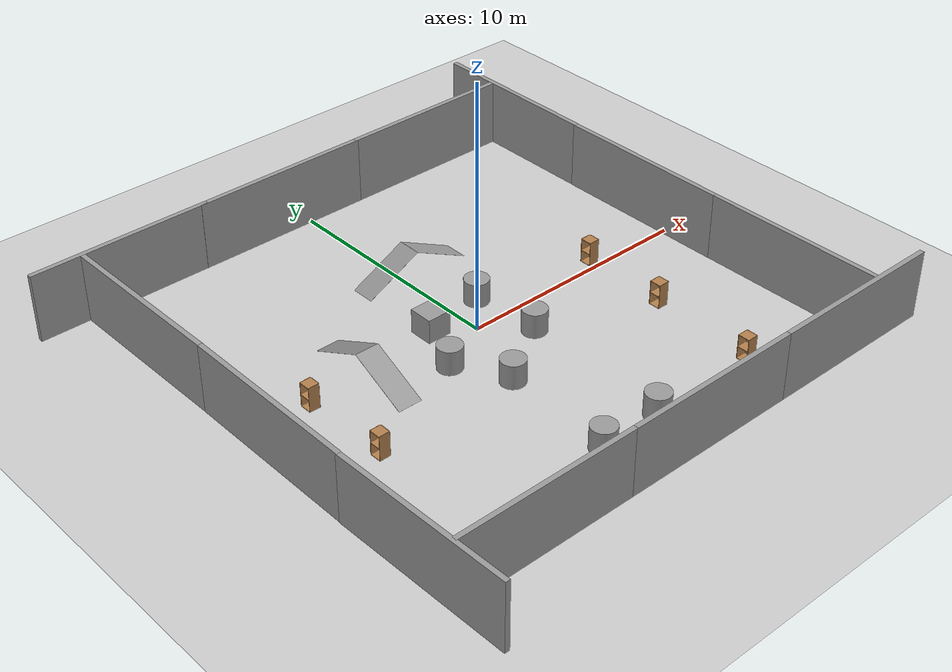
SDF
<sdf version="1.7">
 <world name="default">
  <light name="sun" type="directional">
   <pose>0 0 10 0 -0 0</pose>
   <diffuse>0.8 0.8 0.8 1</diffuse>
   <specular>0.2 0.2 0.2 1</specular>
   <attenuation>
    <range>1000</range>
    <constant>0.9</constant>
    <linear>0.01</linear>
    <quadratic>0.001</quadratic>
   </attenuation>
   <direction>-0.5 0.1 -0.9</direction>
   <spot><inner_angle>0</inner_angle><outer_angle>0</outer_angle><falloff>0</falloff></spot>
  </light>
  <model name="ground_plane">
   <static>1</static>
   <link name="link">
    <collision name="collision">
     <geometry><plane><normal>0 0 1</normal><size>100 100</size></plane></geometry>
     <surface><friction><ode><mu>100</mu><mu2>50</mu2></ode></friction></surface>
    </collision>
    <visual name="visual">
     <cast_shadows>0</cast_shadows>
     <geometry><plane><normal>0 0 1</normal><size>100 100</size></plane></geometry>
     <material>
      <script><uri>file://media/materials/scripts/gazebo.material</uri><name>Gazebo/Grey</name></script>
     </material>
    </visual>
    <enable_wind>1</enable_wind>
   </link>
   <enable_wind>1</enable_wind>
  </model>
  <gravity>0 0 -9.8</gravity>
  <magnetic_field>6e-06 2.3e-05 -4.2e-05</magnetic_field>
  <atmosphere type="adiabatic"/>
  <physics type="ode">
   <max_step_size>0.001</max_step_size>
   <real_time_factor>1</real_time_factor>
   <real_time_update_rate>1000</real_time_update_rate>
  </physics>
  <scene><ambient>0.4 0.4 0.4 1</ambient><background>0.7 0.7 0.7 1</background><shadows>1</shadows></scene>
  <audio><device>default</device></audio>
  <spherical_coordinates>
   <surface_model>EARTH_WGS84</surface_model>
   <latitude_deg>0</latitude_deg>
   <longitude_deg>0</longitude_deg>
   <elevation>0</elevation>
   <heading_deg>0</heading_deg>
  </spherical_coordinates>
  <model name="mobile">
   <link name="base_footprint">
    <inertial>
     <pose>0 0 0.003114 0 -0 0</pose>
     <mass>5.62</mass>
     <inertia><ixx>0.048908</ixx><ixy>0</ixy><ixz>0</ixz><iyy>0.026008</iyy><iyz>0</iyz><izz>0.0596</izz></inertia>
    </inertial>
    <collision name="base_footprint_fixed_joint_lump__base_link_collision">
     <pose>0 0 0.1 0 -0 1.57</pose>
     <geometry><box><size>0.2 0.3 0.1</size></box></geometry>
    </collision>
    <collision name="base_footprint_fixed_joint_lump__lidar_mount_collision_1">
     <pose>0 0 0.175 0 -0 0</pose>
     <geometry><cylinder><length>0.15</length><radius>0.01</radius></cylinder></geometry>
    </collision>
    <visual name="base_footprint_fixed_joint_lump__base_link_visual">
     <pose>0 0 0.1 0 -0 1.57</pose>
     <geometry><box><size>0.2 0.3 0.1</size></box></geometry>
     <material>
      <script><name>Gazebo/Red</name><uri>file://media/materials/scripts/gazebo.material</uri></script>
     </material>
    </visual>
    <visual name="base_footprint_fixed_joint_lump__lidar_mount_visual_1">
     <pose>0 0 0.25 0 -0 0</pose>
     <geometry><cylinder><length>0.15</length><radius>0.01</radius></cylinder></geometry>
    </visual>
   </link>
   <joint name="base_to_wheel1" type="revolute">
    <pose relative_to="base_footprint">0.125 0.125 0.06 0 1.57 1.57</pose>
    <parent>base_footprint</parent>
    <child>wheel_1</child>
    <axis>
     <xyz>0 0 1</xyz>
     <limit><lower>-1e+16</lower><upper>1e+16</upper></limit>
     <dynamics><spring_reference>0</spring_reference><spring_stiffness>0</spring_stiffness></dynamics>
    </axis>
   </joint>
   <link name="wheel_1">
    <pose relative_to="base_to_wheel1">0 0 0 0 -0 0</pose>
    <inertial>
     <mass>0.2</mass>
     <inertia><ixx>0.0002</ixx><ixy>0</ixy><ixz>0</ixz><iyy>0.00015</iyy><iyz>0</iyz><izz>0.0002</izz></inertia>
    </inertial>
    <collision name="wheel_1_collision">
     <geometry><cylinder><length>0.05</length><radius>0.05</radius></cylinder></geometry>
    </collision>
    <visual name="wheel_1_visual">
     <geometry><cylinder><length>0.04</length><radius>0.05</radius></cylinder></geometry>
     <material>
      <script><name>Gazebo/Green</name><uri>file://media/materials/scripts/gazebo.material</uri></script>
     </material>
    </visual>
   </link>
   <joint name="base_to_wheel2" type="revolute">
    <pose relative_to="base_footprint">-0.125 0.125 0.06 0 1.57 1.57</pose>
    <parent>base_footprint</parent>
    <child>wheel_2</child>
    <axis>
     <xyz>0 0 1</xyz>
     <limit><lower>-1e+16</lower><upper>1e+16</upper></limit>
     <dynamics><spring_reference>0</spring_reference><spring_stiffness>0</spring_stiffness></dynamics>
    </axis>
   </joint>
   <link name="wheel_2">
    <pose relative_to="base_to_wheel2">0 0 0 0 -0 0</pose>
    <inertial>
     <mass>0.2</mass>
     <inertia><ixx>0.0002</ixx><ixy>0</ixy><ixz>0</ixz><iyy>0.00015</iyy><iyz>0</iyz><izz>0.0002</izz></inertia>
    </inertial>
    <collision name="wheel_2_collision">
     <geometry><cylinder><length>0.05</length><radius>0.05</radius></cylinder></geometry>
    </collision>
    <visual name="wheel_2_visual">
     <geometry><cylinder><length>0.04</length><radius>0.05</radius></cylinder></geometry>
     <material>
      <script><name>Gazebo/Green</name><uri>file://media/materials/scripts/gazebo.material</uri></script>
     </material>
    </visual>
   </link>
   <joint name="base_to_wheel3" type="revolute">
    <pose relative_to="base_footprint">0.125 -0.125 0.06 0 1.57 1.57</pose>
    <parent>base_footprint</parent>
    <child>wheel_3</child>
    <axis>
     <xyz>0 0 1</xyz>
     <limit><lower>-1e+16</lower><upper>1e+16</upper></limit>
     <dynamics><spring_reference>0</spring_reference><spring_stiffness>0</spring_stiffness></dynamics>
    </axis>
   </joint>
   <link name="wheel_3">
    <pose relative_to="base_to_wheel3">0 0 0 0 -0 0</pose>
    <inertial>
     <mass>0.2</mass>
     <inertia><ixx>0.0002</ixx><ixy>0</ixy><ixz>0</ixz><iyy>0.00015</iyy><iyz>0</iyz><izz>0.0002</izz></inertia>
    </inertial>
    <collision name="wheel_3_collision">
     <geometry><cylinder><length>0.05</length><radius>0.05</radius></cylinder></geometry>
    </collision>
    <visual name="wheel_3_visual">
     <geometry><cylinder><length>0.04</length><radius>0.05</radius></cylinder></geometry>
     <material>
      <script><name>Gazebo/Green</name><uri>file://media/materials/scripts/gazebo.material</uri></script>
     </material>
    </visual>
   </link>
   <joint name="base_to_wheel4" type="revolute">
    <pose relative_to="base_footprint">-0.125 -0.125 0.06 0 1.57 1.57</pose>
    <parent>base_footprint</parent>
    <child>wheel_4</child>
    <axis>
     <xyz>0 0 1</xyz>
     <limit><lower>-1e+16</lower><upper>1e+16</upper></limit>
     <dynamics><spring_reference>0</spring_reference><spring_stiffness>0</spring_stiffness></dynamics>
    </axis>
   </joint>
   <link name="wheel_4">
    <pose relative_to="base_to_wheel4">0 0 0 0 -0 0</pose>
    <inertial>
     <mass>0.2</mass>
     <inertia><ixx>0.0002</ixx><ixy>0</ixy><ixz>0</ixz><iyy>0.00015</iyy><iyz>0</iyz><izz>0.0002</izz></inertia>
    </inertial>
    <collision name="wheel_4_collision">
     <geometry><cylinder><length>0.05</length><radius>0.05</radius></cylinder></geometry>
    </collision>
    <visual name="wheel_4_visual">
     <geometry><cylinder><length>0.04</length><radius>0.05</radius></cylinder></geometry>
     <material>
      <script><name>Gazebo/Green</name><uri>file://media/materials/scripts/gazebo.material</uri></script>
     </material>
    </visual>
   </link>
   <joint name="lidar_joint" type="revolute">
    <pose relative_to="base_footprint">0.1 0 0.225 0 -0 0</pose>
    <parent>base_footprint</parent>
    <child>lidar_link</child>
    <axis>
     <xyz>0 0 1</xyz>
     <limit><lower>-1e+16</lower><upper>1e+16</upper></limit>
     <dynamics><spring_reference>0</spring_reference><spring_stiffness>0</spring_stiffness></dynamics>
    </axis>
   </joint>
   <link name="lidar_link">
    <pose relative_to="lidar_joint">0 0 0 0 -0 0</pose>
    <inertial>
     <mass>0.05</mass>
     <inertia><ixx>0.0001</ixx><ixy>0</ixy><ixz>0</ixz><iyy>0.0001</iyy><iyz>0</iyz><izz>0.0001</izz></inertia>
    </inertial>
    <collision name="lidar_link_collision">
     <geometry><cylinder><length>0.05</length><radius>0.03</radius></cylinder></geometry>
    </collision>
    <visual name="lidar_link_visual">
     <pose>0 0 0.025 0 -0 0</pose>
     <geometry><cylinder><length>0.05</length><radius>0.03</radius></cylinder></geometry>
    </visual>
    <sensor name="lidar" type="ray">
     <pose>0 0 0.025 0 -0 0</pose>
     <visualize>1</visualize>
     <update_rate>10</update_rate>
     <ray>
      <scan>
       <horizontal>
        <samples>360</samples>
        <resolution>1</resolution>
        <min_angle>-3.14159</min_angle>
        <max_angle>3.14159</max_angle>
       </horizontal>
       <vertical><samples>1</samples><min_angle>0</min_angle><max_angle>0</max_angle></vertical>
      </scan>
      <range><min>0.12</min><max>3.5</max><resolution>0.01</resolution></range>
     </ray>
     <plugin name="lidar_controller" filename="libgazebo_ros_ray_sensor.so">
      <ros><namespace>/mobile</namespace><remapping>~/out:=scan</remapping></ros>
      <output_type>sensor_msgs/LaserScan</output_type>
      <frame_name>lidar_link</frame_name>
     </plugin>
    </sensor>
   </link>
   <plugin name="mecanum_drive" filename="libgazebo_ros_planar_move.so">
    <commandTopic>cmd_vel</commandTopic>
    <odometryTopic>odom</odometryTopic>
    <odometryFrame>odom</odometryFrame>
    <robotBaseFrame>base_footprint</robotBaseFrame>
    <publishWheelTF>1</publishWheelTF>
    <publishWheelJointState>1</publishWheelJointState>
    <frontLeftJoint>base_to_wheel1</frontLeftJoint>
    <frontRightJoint>base_to_wheel2</frontRightJoint>
    <rearLeftJoint>base_to_wheel3</rearLeftJoint>
    <rearRightJoint>base_to_wheel4</rearRightJoint>
    <wheelSeparation>0.35</wheelSeparation>
    <wheelDiameter>0.1</wheelDiameter>
    <wheelTorque>2</wheelTorque>
   </plugin>
   <plugin name="lidar_rotation" filename="libgazebo_ros_joint_state_publisher.so">
    <joint_name>lidar_joint</joint_name>
    <update_rate>10</update_rate>
    <velocity>3.14159</velocity>
   </plugin>
   <frame name="mount_joint" attached_to="base_link"><pose>0 0 0.175 0 -0 0</pose></frame>
   <frame name="lidar_mount" attached_to="mount_joint"/>
   <frame name="base_link_joint" attached_to="base_footprint"/>
   <frame name="base_link" attached_to="base_link_joint"/>
   <pose>9.66532 -9.77825 -0.009988 -1e-06 6.4e-05 -3.14157</pose>
  </model>
  <model name="unit_cylinder">
   <pose>1.47684 -1.45425 0.499994 -1e-06 -0 0.198041</pose>
   <link name="wall_link">
    <inertial>
     <mass>1</mass>
     <inertia><ixx>0.145833</ixx><ixy>0</ixy><ixz>0</ixz><iyy>0.145833</iyy><iyz>0</iyz><izz>0.125</izz></inertia>
    </inertial>
    <collision name="collision">
     <geometry><cylinder><radius>0.5</radius><length>1</length></cylinder></geometry>
    </collision>
    <visual name="visual">
     <geometry><cylinder><radius>0.5</radius><length>1</length></cylinder></geometry>
     <material>
      <script><name>Gazebo/Grey</name><uri>file://media/materials/scripts/gazebo.material</uri></script>
     </material>
    </visual>
   </link>
  </model>
  <model name="unit_cylinder_0">
   <pose>1.20355 1.38499 0.499991 -1e-06 -0 -0.042315</pose>
   <link name="link">
    <inertial>
     <mass>1</mass>
     <inertia><ixx>0.145833</ixx><ixy>0</ixy><ixz>0</ixz><iyy>0.145833</iyy><iyz>0</iyz><izz>0.125</izz></inertia>
    </inertial>
    <collision name="collision">
     <geometry><cylinder><radius>0.5</radius><length>1</length></cylinder></geometry>
    </collision>
    <visual name="visual">
     <geometry><cylinder><radius>0.5</radius><length>1</length></cylinder></geometry>
     <material>
      <script><name>Gazebo/Grey</name><uri>file://media/materials/scripts/gazebo.material</uri></script>
     </material>
    </visual>
   </link>
  </model>
  <model name="unit_box">
   <pose>-1.39436 0.971558 0.499995 -1e-05 -0 -1.5e-05</pose>
   <link name="link">
    <inertial>
     <mass>1</mass>
     <inertia>
      <ixx>0.166667</ixx>
      <ixy>0</ixy>
      <ixz>0</ixz>
      <iyy>0.166667</iyy>
      <iyz>0</iyz>
      <izz>0.166667</izz>
     </inertia>
    </inertial>
    <collision name="collision"><geometry><box><size>1 1 1</size></box></geometry></collision>
    <visual name="visual">
     <geometry><box><size>1 1 1</size></box></geometry>
     <material>
      <script><name>Gazebo/Grey</name><uri>file://media/materials/scripts/gazebo.material</uri></script>
     </material>
    </visual>
   </link>
  </model>
  <model name="unit_cylinder_1">
   <pose>-1.16468 -3.14024 0.499994 -3e-06 -1e-06 -0</pose>
   <link name="link">
    <inertial>
     <mass>1</mass>
     <inertia><ixx>0.145833</ixx><ixy>0</ixy><ixz>0</ixz><iyy>0.145833</iyy><iyz>0</iyz><izz>0.125</izz></inertia>
    </inertial>
    <collision name="collision">
     <geometry><cylinder><radius>0.5</radius><length>1</length></cylinder></geometry>
    </collision>
    <visual name="visual">
     <geometry><cylinder><radius>0.5</radius><length>1</length></cylinder></geometry>
     <material>
      <script><name>Gazebo/Grey</name><uri>file://media/materials/scripts/gazebo.material</uri></script>
     </material>
    </visual>
   </link>
  </model>
  <model name="unit_cylinder_2">
   <pose>-2.26618 -1.06872 0.499996 3e-06 1e-06 -0</pose>
   <link name="link">
    <inertial>
     <mass>1</mass>
     <inertia><ixx>0.145833</ixx><ixy>0</ixy><ixz>0</ixz><iyy>0.145833</iyy><iyz>0</iyz><izz>0.125</izz></inertia>
    </inertial>
    <collision name="collision">
     <geometry><cylinder><radius>0.5</radius><length>1</length></cylinder></geometry>
    </collision>
    <visual name="visual">
     <geometry><cylinder><radius>0.5</radius><length>1</length></cylinder></geometry>
     <material>
      <script><name>Gazebo/Grey</name><uri>file://media/materials/scripts/gazebo.material</uri></script>
     </material>
    </visual>
   </link>
  </model>
  <light name="user_directional_light_0" type="directional">
   <pose>34.3436 6.36731 1 0 -0 0</pose>
   <diffuse>0.5 0.5 0.5 1</diffuse>
   <specular>0.1 0.1 0.1 1</specular>
   <direction>0.1 0.1 -0.9</direction>
   <attenuation>
    <range>20</range>
    <constant>0.5</constant>
    <linear>0.01</linear>
    <quadratic>0.001</quadratic>
   </attenuation>
   <spot><inner_angle>0</inner_angle><outer_angle>0</outer_angle><falloff>0</falloff></spot>
  </light>
  <light name="user_directional_light_1" type="directional">
   <pose>-7.62776 36.5536 1 0 -0 0</pose>
   <diffuse>0.5 0.5 0.5 1</diffuse>
   <specular>0.1 0.1 0.1 1</specular>
   <direction>0.1 0.1 -0.9</direction>
   <attenuation>
    <range>20</range>
    <constant>0.5</constant>
    <linear>0.01</linear>
    <quadratic>0.001</quadratic>
   </attenuation>
   <spot><inner_angle>0</inner_angle><outer_angle>0</outer_angle><falloff>0</falloff></spot>
  </light>
  <light name="user_directional_light_2" type="directional">
   <pose>-22.8288 -10.4388 1 0 -0 0</pose>
   <diffuse>0.5 0.5 0.5 1</diffuse>
   <specular>0.1 0.1 0.1 1</specular>
   <direction>0.1 0.1 -0.9</direction>
   <attenuation>
    <range>20</range>
    <constant>0.5</constant>
    <linear>0.01</linear>
    <quadratic>0.001</quadratic>
   </attenuation>
   <spot><inner_angle>0</inner_angle><outer_angle>0</outer_angle><falloff>0</falloff></spot>
  </light>
  <light name="user_directional_light_3" type="directional">
   <pose>21.583 -18.7249 1 0 -0 0</pose>
   <diffuse>0.5 0.5 0.5 1</diffuse>
   <specular>0.1 0.1 0.1 1</specular>
   <direction>0.1 0.1 -0.9</direction>
   <attenuation>
    <range>20</range>
    <constant>0.5</constant>
    <linear>0.01</linear>
    <quadratic>0.001</quadratic>
   </attenuation>
   <spot><inner_angle>0</inner_angle><outer_angle>0</outer_angle><falloff>0</falloff></spot>
  </light>
  <model name="cabinet">
   <static>1</static>
   <link name="cabinet_bottom_plate">
    <inertial>
     <pose>0 0 -1 0 -0 0</pose>
     <inertia><ixx>2.05</ixx><ixy>0</ixy><ixz>0</ixz><iyy>2.05</iyy><iyz>0</iyz><izz>2.05</izz></inertia>
     <mass>25</mass>
    </inertial>
    <collision name="cabinet_bottom_plate_geom">
     <pose>0 0 0.01 0 -0 0</pose>
     <geometry><box><size>0.45 0.45 0.02</size></box></geometry>
    </collision>
    <visual name="cabinet_bottom_plate_geom_visual">
     <pose>0 0 0.01 0 -0 0</pose>
     <geometry><box><size>0.45 0.45 0.02</size></box></geometry>
     <material>
      <script><uri>file://media/materials/scripts/gazebo.material</uri><name>Gazebo/Wood</name></script>
     </material>
    </visual>
    <collision name="cabinet_bottom_plate_geom_cabinet_back_plate">
     <pose>0.235 0 0.51 0 -0 0</pose>
     <geometry><box><size>0.02 0.45 1.02</size></box></geometry>
    </collision>
    <visual name="cabinet_bottom_plate_geom_cabinet_back_plate_visual">
     <pose>0.235 0 0.51 0 -0 0</pose>
     <geometry><box><size>0.02 0.45 1.02</size></box></geometry>
     <material>
      <script><uri>file://media/materials/scripts/gazebo.material</uri><name>Gazebo/Wood</name></script>
     </material>
    </visual>
    <collision name="cabinet_bottom_plate_geom_cabinet_left_plate">
     <pose>0 0.235 0.51 0 -0 0</pose>
     <geometry><box><size>0.45 0.02 1.02</size></box></geometry>
    </collision>
    <visual name="cabinet_bottom_plate_geom_cabinet_left_plate_visual">
     <pose>0 0.235 0.51 0 -0 0</pose>
     <geometry><box><size>0.45 0.02 1.02</size></box></geometry>
     <material>
      <script><uri>file://media/materials/scripts/gazebo.material</uri><name>Gazebo/Wood</name></script>
     </material>
    </visual>
    <collision name="cabinet_bottom_plate_geom_cabinet_middle_plate">
     <pose>0 0 0.51 0 -0 0</pose>
     <geometry><box><size>0.45 0.45 0.02</size></box></geometry>
    </collision>
    <visual name="cabinet_bottom_plate_geom_cabinet_middle_plate_visual">
     <pose>0 0 0.51 0 -0 0</pose>
     <geometry><box><size>0.45 0.45 0.02</size></box></geometry>
     <material>
      <script><uri>file://media/materials/scripts/gazebo.material</uri><name>Gazebo/Wood</name></script>
     </material>
    </visual>
    <collision name="cabinet_bottom_plate_geom_cabinet_right_plate">
     <pose>0 -0.235 0.51 0 -0 0</pose>
     <geometry><box><size>0.45 0.02 1.02</size></box></geometry>
    </collision>
    <visual name="cabinet_bottom_plate_geom_cabinet_right_plate_visual">
     <pose>0 -0.235 0.51 0 -0 0</pose>
     <geometry><box><size>0.45 0.02 1.02</size></box></geometry>
     <material>
      <script><uri>file://media/materials/scripts/gazebo.material</uri><name>Gazebo/Wood</name></script>
     </material>
    </visual>
    <collision name="cabinet_bottom_plate_geom_cabinet_top_plate">
     <pose>0 0 1.01 0 -0 0</pose>
     <geometry><box><size>0.45 0.45 0.02</size></box></geometry>
    </collision>
    <visual name="cabinet_bottom_plate_geom_cabinet_top_plate_visual">
     <pose>0 0 1.01 0 -0 0</pose>
     <geometry><box><size>0.45 0.45 0.02</size></box></geometry>
     <material>
      <script><uri>file://media/materials/scripts/gazebo.material</uri><name>Gazebo/Wood</name></script>
     </material>
    </visual>
   </link>
   <pose>6.20407 0.441176 0 0 -0 0</pose>
  </model>
  <model name="cabinet_0">
   <static>1</static>
   <link name="cabinet_bottom_plate">
    <inertial>
     <pose>0 0 -1 0 -0 0</pose>
     <inertia><ixx>2.05</ixx><ixy>0</ixy><ixz>0</ixz><iyy>2.05</iyy><iyz>0</iyz><izz>2.05</izz></inertia>
     <mass>25</mass>
    </inertial>
    <collision name="cabinet_bottom_plate_geom">
     <pose>0 0 0.01 0 -0 0</pose>
     <geometry><box><size>0.45 0.45 0.02</size></box></geometry>
    </collision>
    <visual name="cabinet_bottom_plate_geom_visual">
     <pose>0 0 0.01 0 -0 0</pose>
     <geometry><box><size>0.45 0.45 0.02</size></box></geometry>
     <material>
      <script><uri>file://media/materials/scripts/gazebo.material</uri><name>Gazebo/Wood</name></script>
     </material>
    </visual>
    <collision name="cabinet_bottom_plate_geom_cabinet_back_plate">
     <pose>0.235 0 0.51 0 -0 0</pose>
     <geometry><box><size>0.02 0.45 1.02</size></box></geometry>
    </collision>
    <visual name="cabinet_bottom_plate_geom_cabinet_back_plate_visual">
     <pose>0.235 0 0.51 0 -0 0</pose>
     <geometry><box><size>0.02 0.45 1.02</size></box></geometry>
     <material>
      <script><uri>file://media/materials/scripts/gazebo.material</uri><name>Gazebo/Wood</name></script>
     </material>
    </visual>
    <collision name="cabinet_bottom_plate_geom_cabinet_left_plate">
     <pose>0 0.235 0.51 0 -0 0</pose>
     <geometry><box><size>0.45 0.02 1.02</size></box></geometry>
    </collision>
    <visual name="cabinet_bottom_plate_geom_cabinet_left_plate_visual">
     <pose>0 0.235 0.51 0 -0 0</pose>
     <geometry><box><size>0.45 0.02 1.02</size></box></geometry>
     <material>
      <script><uri>file://media/materials/scripts/gazebo.material</uri><name>Gazebo/Wood</name></script>
     </material>
    </visual>
    <collision name="cabinet_bottom_plate_geom_cabinet_middle_plate">
     <pose>0 0 0.51 0 -0 0</pose>
     <geometry><box><size>0.45 0.45 0.02</size></box></geometry>
    </collision>
    <visual name="cabinet_bottom_plate_geom_cabinet_middle_plate_visual">
     <pose>0 0 0.51 0 -0 0</pose>
     <geometry><box><size>0.45 0.45 0.02</size></box></geometry>
     <material>
      <script><uri>file://media/materials/scripts/gazebo.material</uri><name>Gazebo/Wood</name></script>
     </material>
    </visual>
    <collision name="cabinet_bottom_plate_geom_cabinet_right_plate">
     <pose>0 -0.235 0.51 0 -0 0</pose>
     <geometry><box><size>0.45 0.02 1.02</size></box></geometry>
    </collision>
    <visual name="cabinet_bottom_plate_geom_cabinet_right_plate_visual">
     <pose>0 -0.235 0.51 0 -0 0</pose>
     <geometry><box><size>0.45 0.02 1.02</size></box></geometry>
     <material>
      <script><uri>file://media/materials/scripts/gazebo.material</uri><name>Gazebo/Wood</name></script>
     </material>
    </visual>
    <collision name="cabinet_bottom_plate_geom_cabinet_top_plate">
     <pose>0 0 1.01 0 -0 0</pose>
     <geometry><box><size>0.45 0.45 0.02</size></box></geometry>
    </collision>
    <visual name="cabinet_bottom_plate_geom_cabinet_top_plate_visual">
     <pose>0 0 1.01 0 -0 0</pose>
     <geometry><box><size>0.45 0.45 0.02</size></box></geometry>
     <material>
      <script><uri>file://media/materials/scripts/gazebo.material</uri><name>Gazebo/Wood</name></script>
     </material>
    </visual>
   </link>
   <pose>6.06277 -3.30596 0 0 -0 0</pose>
  </model>
  <model name="cabinet_1">
   <static>1</static>
   <link name="cabinet_bottom_plate">
    <inertial>
     <pose>0 0 -1 0 -0 0</pose>
     <inertia><ixx>2.05</ixx><ixy>0</ixy><ixz>0</ixz><iyy>2.05</iyy><iyz>0</iyz><izz>2.05</izz></inertia>
     <mass>25</mass>
    </inertial>
    <collision name="cabinet_bottom_plate_geom">
     <pose>0 0 0.01 0 -0 0</pose>
     <geometry><box><size>0.45 0.45 0.02</size></box></geometry>
    </collision>
    <visual name="cabinet_bottom_plate_geom_visual">
     <pose>0 0 0.01 0 -0 0</pose>
     <geometry><box><size>0.45 0.45 0.02</size></box></geometry>
     <material>
      <script><uri>file://media/materials/scripts/gazebo.material</uri><name>Gazebo/Wood</name></script>
     </material>
    </visual>
    <collision name="cabinet_bottom_plate_geom_cabinet_back_plate">
     <pose>0.235 0 0.51 0 -0 0</pose>
     <geometry><box><size>0.02 0.45 1.02</size></box></geometry>
    </collision>
    <visual name="cabinet_bottom_plate_geom_cabinet_back_plate_visual">
     <pose>0.235 0 0.51 0 -0 0</pose>
     <geometry><box><size>0.02 0.45 1.02</size></box></geometry>
     <material>
      <script><uri>file://media/materials/scripts/gazebo.material</uri><name>Gazebo/Wood</name></script>
     </material>
    </visual>
    <collision name="cabinet_bottom_plate_geom_cabinet_left_plate">
     <pose>0 0.235 0.51 0 -0 0</pose>
     <geometry><box><size>0.45 0.02 1.02</size></box></geometry>
    </collision>
    <visual name="cabinet_bottom_plate_geom_cabinet_left_plate_visual">
     <pose>0 0.235 0.51 0 -0 0</pose>
     <geometry><box><size>0.45 0.02 1.02</size></box></geometry>
     <material>
      <script><uri>file://media/materials/scripts/gazebo.material</uri><name>Gazebo/Wood</name></script>
     </material>
    </visual>
    <collision name="cabinet_bottom_plate_geom_cabinet_middle_plate">
     <pose>0 0 0.51 0 -0 0</pose>
     <geometry><box><size>0.45 0.45 0.02</size></box></geometry>
    </collision>
    <visual name="cabinet_bottom_plate_geom_cabinet_middle_plate_visual">
     <pose>0 0 0.51 0 -0 0</pose>
     <geometry><box><size>0.45 0.45 0.02</size></box></geometry>
     <material>
      <script><uri>file://media/materials/scripts/gazebo.material</uri><name>Gazebo/Wood</name></script>
     </material>
    </visual>
    <collision name="cabinet_bottom_plate_geom_cabinet_right_plate">
     <pose>0 -0.235 0.51 0 -0 0</pose>
     <geometry><box><size>0.45 0.02 1.02</size></box></geometry>
    </collision>
    <visual name="cabinet_bottom_plate_geom_cabinet_right_plate_visual">
     <pose>0 -0.235 0.51 0 -0 0</pose>
     <geometry><box><size>0.45 0.02 1.02</size></box></geometry>
     <material>
      <script><uri>file://media/materials/scripts/gazebo.material</uri><name>Gazebo/Wood</name></script>
     </material>
    </visual>
    <collision name="cabinet_bottom_plate_geom_cabinet_top_plate">
     <pose>0 0 1.01 0 -0 0</pose>
     <geometry><box><size>0.45 0.45 0.02</size></box></geometry>
    </collision>
    <visual name="cabinet_bottom_plate_geom_cabinet_top_plate_visual">
     <pose>0 0 1.01 0 -0 0</pose>
     <geometry><box><size>0.45 0.45 0.02</size></box></geometry>
     <material>
      <script><uri>file://media/materials/scripts/gazebo.material</uri><name>Gazebo/Wood</name></script>
     </material>
    </visual>
   </link>
   <pose>5.87239 -7.70916 0 0 -0 0</pose>
  </model>
  <model name="cabinet_2">
   <static>1</static>
   <link name="cabinet_bottom_plate">
    <inertial>
     <pose>0 0 -1 0 -0 0</pose>
     <inertia><ixx>2.05</ixx><ixy>0</ixy><ixz>0</ixz><iyy>2.05</iyy><iyz>0</iyz><izz>2.05</izz></inertia>
     <mass>25</mass>
    </inertial>
    <collision name="cabinet_bottom_plate_geom">
     <pose>0 0 0.01 0 -0 0</pose>
     <geometry><box><size>0.45 0.45 0.02</size></box></geometry>
    </collision>
    <visual name="cabinet_bottom_plate_geom_visual">
     <pose>0 0 0.01 0 -0 0</pose>
     <geometry><box><size>0.45 0.45 0.02</size></box></geometry>
     <material>
      <script><uri>file://media/materials/scripts/gazebo.material</uri><name>Gazebo/Wood</name></script>
     </material>
    </visual>
    <collision name="cabinet_bottom_plate_geom_cabinet_back_plate">
     <pose>0.235 0 0.51 0 -0 0</pose>
     <geometry><box><size>0.02 0.45 1.02</size></box></geometry>
    </collision>
    <visual name="cabinet_bottom_plate_geom_cabinet_back_plate_visual">
     <pose>0.235 0 0.51 0 -0 0</pose>
     <geometry><box><size>0.02 0.45 1.02</size></box></geometry>
     <material>
      <script><uri>file://media/materials/scripts/gazebo.material</uri><name>Gazebo/Wood</name></script>
     </material>
    </visual>
    <collision name="cabinet_bottom_plate_geom_cabinet_left_plate">
     <pose>0 0.235 0.51 0 -0 0</pose>
     <geometry><box><size>0.45 0.02 1.02</size></box></geometry>
    </collision>
    <visual name="cabinet_bottom_plate_geom_cabinet_left_plate_visual">
     <pose>0 0.235 0.51 0 -0 0</pose>
     <geometry><box><size>0.45 0.02 1.02</size></box></geometry>
     <material>
      <script><uri>file://media/materials/scripts/gazebo.material</uri><name>Gazebo/Wood</name></script>
     </material>
    </visual>
    <collision name="cabinet_bottom_plate_geom_cabinet_middle_plate">
     <pose>0 0 0.51 0 -0 0</pose>
     <geometry><box><size>0.45 0.45 0.02</size></box></geometry>
    </collision>
    <visual name="cabinet_bottom_plate_geom_cabinet_middle_plate_visual">
     <pose>0 0 0.51 0 -0 0</pose>
     <geometry><box><size>0.45 0.45 0.02</size></box></geometry>
     <material>
      <script><uri>file://media/materials/scripts/gazebo.material</uri><name>Gazebo/Wood</name></script>
     </material>
    </visual>
    <collision name="cabinet_bottom_plate_geom_cabinet_right_plate">
     <pose>0 -0.235 0.51 0 -0 0</pose>
     <geometry><box><size>0.45 0.02 1.02</size></box></geometry>
    </collision>
    <visual name="cabinet_bottom_plate_geom_cabinet_right_plate_visual">
     <pose>0 -0.235 0.51 0 -0 0</pose>
     <geometry><box><size>0.45 0.02 1.02</size></box></geometry>
     <material>
      <script><uri>file://media/materials/scripts/gazebo.material</uri><name>Gazebo/Wood</name></script>
     </material>
    </visual>
    <collision name="cabinet_bottom_plate_geom_cabinet_top_plate">
     <pose>0 0 1.01 0 -0 0</pose>
     <geometry><box><size>0.45 0.45 0.02</size></box></geometry>
    </collision>
    <visual name="cabinet_bottom_plate_geom_cabinet_top_plate_visual">
     <pose>0 0 1.01 0 -0 0</pose>
     <geometry><box><size>0.45 0.45 0.02</size></box></geometry>
     <material>
      <script><uri>file://media/materials/scripts/gazebo.material</uri><name>Gazebo/Wood</name></script>
     </material>
    </visual>
   </link>
   <pose>-7.26254 0.43817 0 0 -0 0</pose>
  </model>
  <model name="cabinet_3">
   <static>1</static>
   <link name="cabinet_bottom_plate">
    <inertial>
     <pose>0 0 -1 0 -0 0</pose>
     <inertia><ixx>2.05</ixx><ixy>0</ixy><ixz>0</ixz><iyy>2.05</iyy><iyz>0</iyz><izz>2.05</izz></inertia>
     <mass>25</mass>
    </inertial>
    <collision name="cabinet_bottom_plate_geom">
     <pose>0 0 0.01 0 -0 0</pose>
     <geometry><box><size>0.45 0.45 0.02</size></box></geometry>
    </collision>
    <visual name="cabinet_bottom_plate_geom_visual">
     <pose>0 0 0.01 0 -0 0</pose>
     <geometry><box><size>0.45 0.45 0.02</size></box></geometry>
     <material>
      <script><uri>file://media/materials/scripts/gazebo.material</uri><name>Gazebo/Wood</name></script>
     </material>
    </visual>
    <collision name="cabinet_bottom_plate_geom_cabinet_back_plate">
     <pose>0.235 0 0.51 0 -0 0</pose>
     <geometry><box><size>0.02 0.45 1.02</size></box></geometry>
    </collision>
    <visual name="cabinet_bottom_plate_geom_cabinet_back_plate_visual">
     <pose>0.235 0 0.51 0 -0 0</pose>
     <geometry><box><size>0.02 0.45 1.02</size></box></geometry>
     <material>
      <script><uri>file://media/materials/scripts/gazebo.material</uri><name>Gazebo/Wood</name></script>
     </material>
    </visual>
    <collision name="cabinet_bottom_plate_geom_cabinet_left_plate">
     <pose>0 0.235 0.51 0 -0 0</pose>
     <geometry><box><size>0.45 0.02 1.02</size></box></geometry>
    </collision>
    <visual name="cabinet_bottom_plate_geom_cabinet_left_plate_visual">
     <pose>0 0.235 0.51 0 -0 0</pose>
     <geometry><box><size>0.45 0.02 1.02</size></box></geometry>
     <material>
      <script><uri>file://media/materials/scripts/gazebo.material</uri><name>Gazebo/Wood</name></script>
     </material>
    </visual>
    <collision name="cabinet_bottom_plate_geom_cabinet_middle_plate">
     <pose>0 0 0.51 0 -0 0</pose>
     <geometry><box><size>0.45 0.45 0.02</size></box></geometry>
    </collision>
    <visual name="cabinet_bottom_plate_geom_cabinet_middle_plate_visual">
     <pose>0 0 0.51 0 -0 0</pose>
     <geometry><box><size>0.45 0.45 0.02</size></box></geometry>
     <material>
      <script><uri>file://media/materials/scripts/gazebo.material</uri><name>Gazebo/Wood</name></script>
     </material>
    </visual>
    <collision name="cabinet_bottom_plate_geom_cabinet_right_plate">
     <pose>0 -0.235 0.51 0 -0 0</pose>
     <geometry><box><size>0.45 0.02 1.02</size></box></geometry>
    </collision>
    <visual name="cabinet_bottom_plate_geom_cabinet_right_plate_visual">
     <pose>0 -0.235 0.51 0 -0 0</pose>
     <geometry><box><size>0.45 0.02 1.02</size></box></geometry>
     <material>
      <script><uri>file://media/materials/scripts/gazebo.material</uri><name>Gazebo/Wood</name></script>
     </material>
    </visual>
    <collision name="cabinet_bottom_plate_geom_cabinet_top_plate">
     <pose>0 0 1.01 0 -0 0</pose>
     <geometry><box><size>0.45 0.45 0.02</size></box></geometry>
    </collision>
    <visual name="cabinet_bottom_plate_geom_cabinet_top_plate_visual">
     <pose>0 0 1.01 0 -0 0</pose>
     <geometry><box><size>0.45 0.45 0.02</size></box></geometry>
     <material>
      <script><uri>file://media/materials/scripts/gazebo.material</uri><name>Gazebo/Wood</name></script>
     </material>
    </visual>
   </link>
   <pose>-7.11146 -3.14017 0 0 -0 0</pose>
  </model>
  <model name="grey_wall">
   <static>1</static>
   <link name="link">
    <pose>0 0 1.4 0 -0 0</pose>
    <collision name="collision"><geometry><box><size>7.5 0.2 2.8</size></box></geometry></collision>
    <visual name="visual">
     <cast_shadows>0</cast_shadows>
     <geometry><box><size>7.5 0.2 2.8</size></box></geometry>
     <material>
      <script>
       <uri>model://grey_wall/materials/scripts</uri>
       <uri>model://grey_wall/materials/textures</uri>
       <name>vrc/grey_wall</name>
      </script>
     </material>
    </visual>
   </link>
   <pose>-6.16963 -10.0263 0 0 -0 0</pose>
  </model>
  <model name="grey_wall_0">
   <static>1</static>
   <link name="link">
    <pose>0 0 1.4 0 -0 0</pose>
    <collision name="collision"><geometry><box><size>7.5 0.2 2.8</size></box></geometry></collision>
    <visual name="visual">
     <cast_shadows>0</cast_shadows>
     <geometry><box><size>7.5 0.2 2.8</size></box></geometry>
     <material>
      <script>
       <uri>model://grey_wall/materials/scripts</uri>
       <uri>model://grey_wall/materials/textures</uri>
       <name>vrc/grey_wall</name>
      </script>
     </material>
    </visual>
   </link>
   <pose>1.28323 -10.0274 0 0 -0 0</pose>
  </model>
  <model name="grey_wall_1">
   <static>1</static>
   <link name="link">
    <pose>0 0 1.4 0 -0 0</pose>
    <collision name="collision"><geometry><box><size>7.5 0.2 2.8</size></box></geometry></collision>
    <visual name="visual">
     <cast_shadows>0</cast_shadows>
     <geometry><box><size>7.5 0.2 2.8</size></box></geometry>
     <material>
      <script>
       <uri>model://grey_wall/materials/scripts</uri>
       <uri>model://grey_wall/materials/textures</uri>
       <name>vrc/grey_wall</name>
      </script>
     </material>
    </visual>
   </link>
   <pose>8.7317 -10.0283 0 0 -0 0</pose>
  </model>
  <model name="grey_wall_2">
   <static>1</static>
   <link name="link">
    <pose>0 0 1.4 0 -0 0</pose>
    <collision name="collision"><geometry><box><size>7.5 0.2 2.8</size></box></geometry></collision>
    <visual name="visual">
     <cast_shadows>0</cast_shadows>
     <geometry><box><size>7.5 0.2 2.8</size></box></geometry>
     <material>
      <script>
       <uri>model://grey_wall/materials/scripts</uri>
       <uri>model://grey_wall/materials/textures</uri>
       <name>vrc/grey_wall</name>
      </script>
     </material>
    </visual>
   </link>
   <pose>9.92946 -6.19201 0 0 -0 1.57396</pose>
  </model>
  <model name="grey_wall_3">
   <static>1</static>
   <link name="link">
    <pose>0 0 1.4 0 -0 0</pose>
    <collision name="collision"><geometry><box><size>7.5 0.2 2.8</size></box></geometry></collision>
    <visual name="visual">
     <cast_shadows>0</cast_shadows>
     <geometry><box><size>7.5 0.2 2.8</size></box></geometry>
     <material>
      <script>
       <uri>model://grey_wall/materials/scripts</uri>
       <uri>model://grey_wall/materials/textures</uri>
       <name>vrc/grey_wall</name>
      </script>
     </material>
    </visual>
   </link>
   <pose>9.91462 1.30754 0 0 0 -1.57099</pose>
  </model>
  <model name="grey_wall_4">
   <static>1</static>
   <link name="link">
    <pose>0 0 1.4 0 -0 0</pose>
    <collision name="collision"><geometry><box><size>7.5 0.2 2.8</size></box></geometry></collision>
    <visual name="visual">
     <cast_shadows>0</cast_shadows>
     <geometry><box><size>7.5 0.2 2.8</size></box></geometry>
     <material>
      <script>
       <uri>model://grey_wall/materials/scripts</uri>
       <uri>model://grey_wall/materials/textures</uri>
       <name>vrc/grey_wall</name>
      </script>
     </material>
    </visual>
   </link>
   <pose>9.93707 8.74262 0 0 0 -1.57319</pose>
  </model>
  <model name="grey_wall_5">
   <static>1</static>
   <link name="link">
    <pose>0 0 1.4 0 -0 0</pose>
    <collision name="collision"><geometry><box><size>7.5 0.2 2.8</size></box></geometry></collision>
    <visual name="visual">
     <cast_shadows>0</cast_shadows>
     <geometry><box><size>7.5 0.2 2.8</size></box></geometry>
     <material>
      <script>
       <uri>model://grey_wall/materials/scripts</uri>
       <uri>model://grey_wall/materials/textures</uri>
       <name>vrc/grey_wall</name>
      </script>
     </material>
    </visual>
   </link>
   <pose>6.16848 10.0328 0 0 -0 0</pose>
  </model>
  <model name="grey_wall_6">
   <static>1</static>
   <link name="link">
    <pose>0 0 1.4 0 -0 0</pose>
    <collision name="collision"><geometry><box><size>7.5 0.2 2.8</size></box></geometry></collision>
    <visual name="visual">
     <cast_shadows>0</cast_shadows>
     <geometry><box><size>7.5 0.2 2.8</size></box></geometry>
     <material>
      <script>
       <uri>model://grey_wall/materials/scripts</uri>
       <uri>model://grey_wall/materials/textures</uri>
       <name>vrc/grey_wall</name>
      </script>
     </material>
    </visual>
   </link>
   <pose>-1.23273 10.029 0 0 -0 0</pose>
  </model>
  <model name="grey_wall_7">
   <static>1</static>
   <link name="link">
    <pose>0 0 1.4 0 -0 0</pose>
    <collision name="collision"><geometry><box><size>7.5 0.2 2.8</size></box></geometry></collision>
    <visual name="visual">
     <cast_shadows>0</cast_shadows>
     <geometry><box><size>7.5 0.2 2.8</size></box></geometry>
     <material>
      <script>
       <uri>model://grey_wall/materials/scripts</uri>
       <uri>model://grey_wall/materials/textures</uri>
       <name>vrc/grey_wall</name>
      </script>
     </material>
    </visual>
   </link>
   <pose>-8.41903 10.0354 0 0 -0 0</pose>
  </model>
  <model name="grey_wall_8">
   <static>1</static>
   <link name="link">
    <pose>0 0 1.4 0 -0 0</pose>
    <collision name="collision"><geometry><box><size>7.5 0.2 2.8</size></box></geometry></collision>
    <visual name="visual">
     <cast_shadows>0</cast_shadows>
     <geometry><box><size>7.5 0.2 2.8</size></box></geometry>
     <material>
      <script>
       <uri>model://grey_wall/materials/scripts</uri>
       <uri>model://grey_wall/materials/textures</uri>
       <name>vrc/grey_wall</name>
      </script>
     </material>
    </visual>
   </link>
   <pose>-10.0239 6.28408 0 0 -0 1.57937</pose>
  </model>
  <model name="grey_wall_9">
   <static>1</static>
   <link name="link">
    <pose>0 0 1.4 0 -0 0</pose>
    <collision name="collision"><geometry><box><size>7.5 0.2 2.8</size></box></geometry></collision>
    <visual name="visual">
     <cast_shadows>0</cast_shadows>
     <geometry><box><size>7.5 0.2 2.8</size></box></geometry>
     <material>
      <script>
       <uri>model://grey_wall/materials/scripts</uri>
       <uri>model://grey_wall/materials/textures</uri>
       <name>vrc/grey_wall</name>
      </script>
     </material>
    </visual>
   </link>
   <pose>-10.009 -1.11193 0 0 -0 1.56763</pose>
  </model>
  <model name="grey_wall_10">
   <static>1</static>
   <link name="link">
    <pose>0 0 1.4 0 -0 0</pose>
    <collision name="collision"><geometry><box><size>7.5 0.2 2.8</size></box></geometry></collision>
    <visual name="visual">
     <cast_shadows>0</cast_shadows>
     <geometry><box><size>7.5 0.2 2.8</size></box></geometry>
     <material>
      <script>
       <uri>model://grey_wall/materials/scripts</uri>
       <uri>model://grey_wall/materials/textures</uri>
       <name>vrc/grey_wall</name>
      </script>
     </material>
    </visual>
   </link>
   <pose>-9.98502 -8.55226 0 0 -0 1.58485</pose>
  </model>
  <model name="unit_cylinder_3">
   <pose>1.18816 -7.78103 0.499994 -4e-06 -2e-06 -0</pose>
   <link name="link">
    <inertial>
     <mass>1</mass>
     <inertia><ixx>0.145833</ixx><ixy>0</ixy><ixz>0</ixz><iyy>0.145833</iyy><iyz>0</iyz><izz>0.125</izz></inertia>
    </inertial>
    <collision name="collision">
     <geometry><cylinder><radius>0.5</radius><length>1</length></cylinder></geometry>
    </collision>
    <visual name="visual">
     <geometry><cylinder><radius>0.5</radius><length>1</length></cylinder></geometry>
     <material>
      <script><name>Gazebo/Grey</name><uri>file://media/materials/scripts/gazebo.material</uri></script>
     </material>
    </visual>
   </link>
  </model>
  <model name="unit_cylinder_4">
   <pose>-1.44493 -7.79625 0.499997 3e-06 -2e-06 0</pose>
   <link name="link">
    <inertial>
     <mass>1</mass>
     <inertia><ixx>0.145833</ixx><ixy>0</ixy><ixz>0</ixz><iyy>0.145833</iyy><iyz>0</iyz><izz>0.125</izz></inertia>
    </inertial>
    <collision name="collision">
     <geometry><cylinder><radius>0.5</radius><length>1</length></cylinder></geometry>
    </collision>
    <visual name="visual">
     <geometry><cylinder><radius>0.5</radius><length>1</length></cylinder></geometry>
     <material>
      <script><name>Gazebo/Grey</name><uri>file://media/materials/scripts/gazebo.material</uri></script>
     </material>
    </visual>
   </link>
  </model>
  <light name="user_directional_light_4" type="directional">
   <pose>-37.9384 17.836 1 0 -0 0</pose>
   <diffuse>0.5 0.5 0.5 1</diffuse>
   <specular>0.1 0.1 0.1 1</specular>
   <direction>0.1 0.1 -0.9</direction>
   <attenuation>
    <range>20</range>
    <constant>0.5</constant>
    <linear>0.01</linear>
    <quadratic>0.001</quadratic>
   </attenuation>
   <spot><inner_angle>0</inner_angle><outer_angle>0</outer_angle><falloff>0</falloff></spot>
  </light>
  <model name="unit_box_0">
   <pose>-4.6996 -0.638273 0.550681 0.45 -0 -0.010832</pose>
   <link name="link">
    <inertial>
     <mass>1</mass>
     <inertia>
      <ixx>0.166667</ixx>
      <ixy>0</ixy>
      <ixz>0</ixz>
      <iyy>0.166667</iyy>
      <iyz>0</iyz>
      <izz>0.166667</izz>
     </inertia>
    </inertial>
    <collision name="collision"><geometry><box><size>1 2.59965 0.004574</size></box></geometry></collision>
    <visual name="visual">
     <geometry><box><size>1 2.59965 0.004574</size></box></geometry>
     <material>
      <script><name>Gazebo/Grey</name><uri>file://media/materials/scripts/gazebo.material</uri></script>
     </material>
    </visual>
    <enable_wind>1</enable_wind>
    <kinematic>1</kinematic>
   </link>
   <enable_wind>1</enable_wind>
  </model>
  <model name="unit_box_0_clone">
   <pose>-4.67824 1.70191 0.553077 -0.45 -0 -0.010831</pose>
   <link name="link">
    <inertial>
     <mass>1</mass>
     <inertia>
      <ixx>0.166667</ixx>
      <ixy>0</ixy>
      <ixz>0</ixz>
      <iyy>0.166667</iyy>
      <iyz>0</iyz>
      <izz>0.166667</izz>
     </inertia>
    </inertial>
    <collision name="collision"><geometry><box><size>1 2.59965 0.004574</size></box></geometry></collision>
    <visual name="visual">
     <geometry><box><size>1 2.59965 0.004574</size></box></geometry>
     <material>
      <script><name>Gazebo/Grey</name><uri>file://media/materials/scripts/gazebo.material</uri></script>
     </material>
    </visual>
    <enable_wind>1</enable_wind>
    <kinematic>1</kinematic>
   </link>
   <enable_wind>1</enable_wind>
  </model>
  <model name="unit_box_0_clone_0">
   <pose>-0.600085 4.48106 0.577859 0.465181 0.001402 -1.57087</pose>
   <link name="link">
    <inertial>
     <mass>1</mass>
     <inertia>
      <ixx>0.166667</ixx>
      <ixy>0</ixy>
      <ixz>0</ixz>
      <iyy>0.166667</iyy>
      <iyz>0</iyz>
      <izz>0.166667</izz>
     </inertia>
    </inertial>
    <collision name="collision"><geometry><box><size>1 2.59965 0.004574</size></box></geometry></collision>
    <visual name="visual">
     <geometry><box><size>1 2.59965 0.004574</size></box></geometry>
     <material>
      <script><name>Gazebo/Grey</name><uri>file://media/materials/scripts/gazebo.material</uri></script>
     </material>
    </visual>
    <enable_wind>1</enable_wind>
    <kinematic>1</kinematic>
   </link>
   <enable_wind>1</enable_wind>
  </model>
  <model name="unit_box_0_clone_0_clone">
   <pose>1.72144 4.48066 0.579012 -0.465181 0.001403 -1.57087</pose>
   <link name="link">
    <inertial>
     <mass>1</mass>
     <inertia>
      <ixx>0.166667</ixx>
      <ixy>0</ixy>
      <ixz>0</ixz>
      <iyy>0.166667</iyy>
      <iyz>0</iyz>
      <izz>0.166667</izz>
     </inertia>
    </inertial>
    <collision name="collision"><geometry><box><size>1 2.59965 0.004574</size></box></geometry></collision>
    <visual name="visual">
     <geometry><box><size>1 2.59965 0.004574</size></box></geometry>
     <material>
      <script><name>Gazebo/Grey</name><uri>file://media/materials/scripts/gazebo.material</uri></script>
     </material>
    </visual>
    <enable_wind>1</enable_wind>
    <kinematic>1</kinematic>
   </link>
   <enable_wind>1</enable_wind>
  </model>
 </world>
</sdf>
